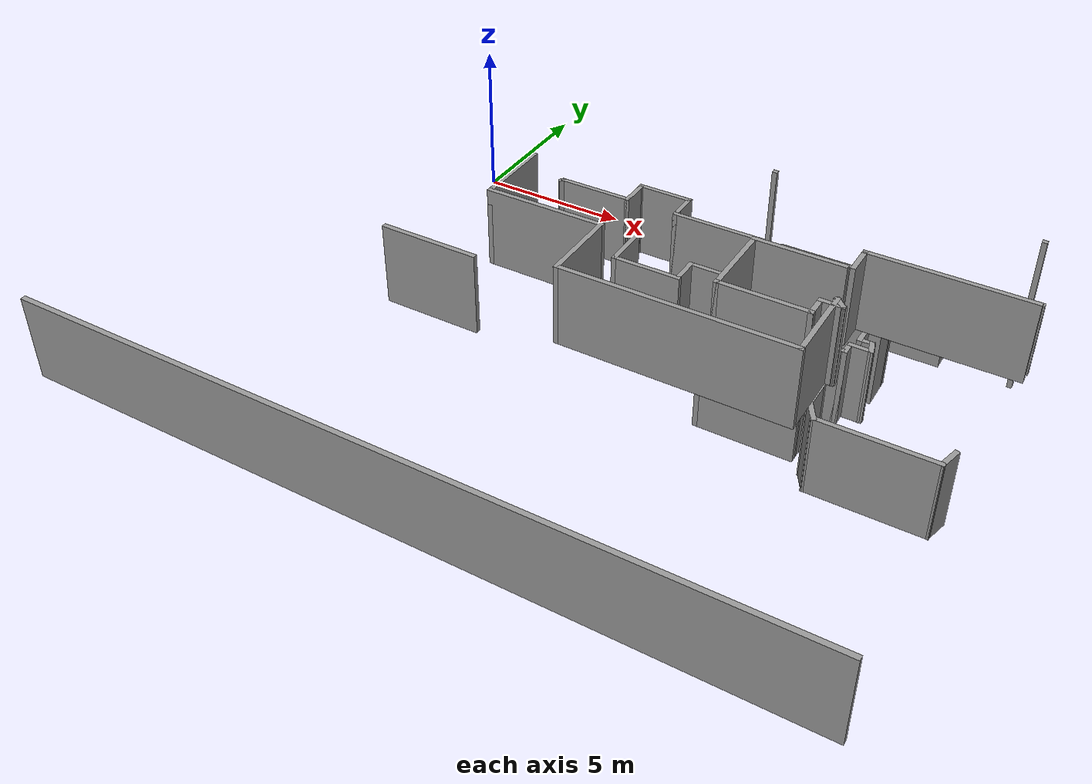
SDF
<sdf version="1.4">
 <model name="gdc">
  <pose>30.4954 -5.57665 0 0 -0 0</pose>
  <link name="Wall_124">
   <collision name="Wall_124_Collision">
    <geometry><box><size>0.75 0.15 2.5</size></box></geometry>
    <pose>0 0 1.25 0 -0 0</pose>
   </collision>
   <visual name="Wall_124_Visual">
    <pose>0 0 1.25 0 -0 0</pose>
    <geometry><box><size>0.75 0.15 2.5</size></box></geometry>
    <material>
     <script><uri>file://media/materials/scripts/gazebo.material</uri><name>Gazebo/Grey</name></script>
     <ambient>1 1 1 1</ambient>
    </material>
   </visual>
   <pose>-11.4107 -3.24451 0 0 0 -1.8326</pose>
  </link>
  <link name="Wall_125">
   <collision name="Wall_125_Collision">
    <geometry><box><size>3.5 0.15 2.5</size></box></geometry>
    <pose>0 0 1.25 0 -0 0</pose>
   </collision>
   <visual name="Wall_125_Visual">
    <pose>0 0 1.25 0 -0 0</pose>
    <geometry><box><size>3.5 0.15 2.5</size></box></geometry>
    <material>
     <script><uri>file://media/materials/scripts/gazebo.material</uri><name>Gazebo/Grey</name></script>
     <ambient>1 1 1 1</ambient>
    </material>
   </visual>
   <pose>-13.1633 -3.53429 0 0 -0 3.14159</pose>
  </link>
  <link name="Wall_126">
   <collision name="Wall_126_Collision">
    <geometry><box><size>0.75 0.15 2.5</size></box></geometry>
    <pose>0 0 1.25 0 -0 0</pose>
   </collision>
   <visual name="Wall_126_Visual">
    <pose>0 0 1.25 0 -0 0</pose>
    <geometry><box><size>0.75 0.15 2.5</size></box></geometry>
    <material>
     <script><uri>file://media/materials/scripts/gazebo.material</uri><name>Gazebo/Grey</name></script>
     <ambient>1 1 1 1</ambient>
    </material>
   </visual>
   <pose>-14.9883 -3.27449 0 0 -0 2.0944</pose>
  </link>
  <link name="Wall_127">
   <collision name="Wall_127_Collision">
    <geometry><box><size>1 0.15 2.5</size></box></geometry>
    <pose>0 0 1.25 0 -0 0</pose>
   </collision>
   <visual name="Wall_127_Visual">
    <pose>0 0 1.25 0 -0 0</pose>
    <geometry><box><size>1 0.15 2.5</size></box></geometry>
    <material>
     <script><uri>file://media/materials/scripts/gazebo.material</uri><name>Gazebo/Grey</name></script>
     <ambient>1 1 1 1</ambient>
    </material>
   </visual>
   <pose>-15.1383 -2.58968 0 0 -0 1.5708</pose>
  </link>
  <link name="Wall_128">
   <collision name="Wall_128_Collision">
    <geometry><box><size>0.5 0.15 2.5</size></box></geometry>
    <pose>0 0 1.25 0 -0 0</pose>
   </collision>
   <visual name="Wall_128_Visual">
    <pose>0 0 1.25 0 -0 0</pose>
    <geometry><box><size>0.5 0.15 2.5</size></box></geometry>
    <material>
     <script><uri>file://media/materials/scripts/gazebo.material</uri><name>Gazebo/Grey</name></script>
     <ambient>1 1 1 1</ambient>
    </material>
   </visual>
   <pose>-15.3133 -2.16468 0 0 -0 3.14159</pose>
  </link>
  <link name="Wall_129">
   <collision name="Wall_129_Collision">
    <geometry><box><size>0.25 0.15 2.5</size></box></geometry>
    <pose>0 0 1.25 0 -0 0</pose>
   </collision>
   <visual name="Wall_129_Visual">
    <pose>0 0 1.25 0 -0 0</pose>
    <geometry><box><size>0.25 0.15 2.5</size></box></geometry>
    <material>
     <script><uri>file://media/materials/scripts/gazebo.material</uri><name>Gazebo/Grey</name></script>
     <ambient>1 1 1 1</ambient>
    </material>
   </visual>
   <pose>-15.5383 -2.16468 0 0 -0 3.14159</pose>
  </link>
  <link name="Wall_130">
   <collision name="Wall_130_Collision">
    <geometry><box><size>0.5 0.15 2.5</size></box></geometry>
    <pose>0 0 1.25 0 -0 0</pose>
   </collision>
   <visual name="Wall_130_Visual">
    <pose>0 0 1.25 0 -0 0</pose>
    <geometry><box><size>0.5 0.15 2.5</size></box></geometry>
    <material>
     <script><uri>file://media/materials/scripts/gazebo.material</uri><name>Gazebo/Grey</name></script>
     <ambient>1 1 1 1</ambient>
    </material>
   </visual>
   <pose>-15.5883 -2.33968 0 0 0 -1.5708</pose>
  </link>
  <link name="Wall_131">
   <collision name="Wall_131_Collision">
    <geometry><box><size>0.25 0.15 2.5</size></box></geometry>
    <pose>0 0 1.25 0 -0 0</pose>
   </collision>
   <visual name="Wall_131_Visual">
    <pose>0 0 1.25 0 -0 0</pose>
    <geometry><box><size>0.25 0.15 2.5</size></box></geometry>
    <material>
     <script><uri>file://media/materials/scripts/gazebo.material</uri><name>Gazebo/Grey</name></script>
     <ambient>1 1 1 1</ambient>
    </material>
   </visual>
   <pose>-15.5883 -2.56468 0 0 0 -1.5708</pose>
  </link>
  <link name="Wall_132">
   <collision name="Wall_132_Collision">
    <geometry><box><size>3 0.15 2.5</size></box></geometry>
    <pose>0 0 1.25 0 -0 0</pose>
   </collision>
   <visual name="Wall_132_Visual">
    <pose>0 0 1.25 0 -0 0</pose>
    <geometry><box><size>3 0.15 2.5</size></box></geometry>
    <material>
     <script><uri>file://media/materials/scripts/gazebo.material</uri><name>Gazebo/Grey</name></script>
     <ambient>1 1 1 1</ambient>
    </material>
   </visual>
   <pose>-17.0133 -2.61468 0 0 -0 3.14159</pose>
  </link>
  <link name="Wall_133">
   <collision name="Wall_133_Collision">
    <geometry><box><size>2.5 0.15 2.5</size></box></geometry>
    <pose>0 0 1.25 0 -0 0</pose>
   </collision>
   <visual name="Wall_133_Visual">
    <pose>0 0 1.25 0 -0 0</pose>
    <geometry><box><size>2.5 0.15 2.5</size></box></geometry>
    <material>
     <script><uri>file://media/materials/scripts/gazebo.material</uri><name>Gazebo/Grey</name></script>
     <ambient>1 1 1 1</ambient>
    </material>
   </visual>
   <pose>-18.4383 -1.43968 0 0 -0 1.5708</pose>
  </link>
  <link name="Wall_134">
   <collision name="Wall_134_Collision">
    <geometry><box><size>0.25 0.15 2.5</size></box></geometry>
    <pose>0 0 1.25 0 -0 0</pose>
   </collision>
   <visual name="Wall_134_Visual">
    <pose>0 0 1.25 0 -0 0</pose>
    <geometry><box><size>0.25 0.15 2.5</size></box></geometry>
    <material>
     <script><uri>file://media/materials/scripts/gazebo.material</uri><name>Gazebo/Grey</name></script>
     <ambient>1 1 1 1</ambient>
    </material>
   </visual>
   <pose>-18.4383 -0.214678 0 0 -0 1.5708</pose>
  </link>
  <link name="Wall_135">
   <collision name="Wall_135_Collision">
    <geometry><box><size>3 0.15 2.5</size></box></geometry>
    <pose>0 0 1.25 0 -0 0</pose>
   </collision>
   <visual name="Wall_135_Visual">
    <pose>0 0 1.25 0 -0 0</pose>
    <geometry><box><size>3 0.15 2.5</size></box></geometry>
    <material>
     <script><uri>file://media/materials/scripts/gazebo.material</uri><name>Gazebo/Grey</name></script>
     <ambient>1 1 1 1</ambient>
    </material>
   </visual>
   <pose>-17.0133 -0.164678 0 0 -0 0</pose>
  </link>
  <link name="Wall_136">
   <collision name="Wall_136_Collision">
    <geometry><box><size>0.5 0.15 2.5</size></box></geometry>
    <pose>0 0 1.25 0 -0 0</pose>
   </collision>
   <visual name="Wall_136_Visual">
    <pose>0 0 1.25 0 -0 0</pose>
    <geometry><box><size>0.5 0.15 2.5</size></box></geometry>
    <material>
     <script><uri>file://media/materials/scripts/gazebo.material</uri><name>Gazebo/Grey</name></script>
     <ambient>1 1 1 1</ambient>
    </material>
   </visual>
   <pose>-15.5883 -0.339678 0 0 0 -1.5708</pose>
  </link>
  <link name="Wall_137">
   <collision name="Wall_137_Collision">
    <geometry><box><size>0.5 0.15 2.5</size></box></geometry>
    <pose>0 0 1.25 0 -0 0</pose>
   </collision>
   <visual name="Wall_137_Visual">
    <pose>0 0 1.25 0 -0 0</pose>
    <geometry><box><size>0.5 0.15 2.5</size></box></geometry>
    <material>
     <script><uri>file://media/materials/scripts/gazebo.material</uri><name>Gazebo/Grey</name></script>
     <ambient>1 1 1 1</ambient>
    </material>
   </visual>
   <pose>-15.4133 -0.514678 0 0 -0 0</pose>
  </link>
  <link name="Wall_138">
   <collision name="Wall_138_Collision">
    <geometry><box><size>0.25 0.15 2.5</size></box></geometry>
    <pose>0 0 1.25 0 -0 0</pose>
   </collision>
   <visual name="Wall_138_Visual">
    <pose>0 0 1.25 0 -0 0</pose>
    <geometry><box><size>0.25 0.15 2.5</size></box></geometry>
    <material>
     <script><uri>file://media/materials/scripts/gazebo.material</uri><name>Gazebo/Grey</name></script>
     <ambient>1 1 1 1</ambient>
    </material>
   </visual>
   <pose>-15.1883 -0.514678 0 0 -0 0</pose>
  </link>
  <link name="Wall_139">
   <collision name="Wall_139_Collision">
    <geometry><box><size>0.5 0.15 2.5</size></box></geometry>
    <pose>0 0 1.25 0 -0 0</pose>
   </collision>
   <visual name="Wall_139_Visual">
    <pose>0 0 1.25 0 -0 0</pose>
    <geometry><box><size>0.5 0.15 2.5</size></box></geometry>
    <material>
     <script><uri>file://media/materials/scripts/gazebo.material</uri><name>Gazebo/Grey</name></script>
     <ambient>1 1 1 1</ambient>
    </material>
   </visual>
   <pose>-15.1383 -0.339678 0 0 -0 1.5708</pose>
  </link>
  <link name="Wall_140">
   <collision name="Wall_140_Collision">
    <geometry><box><size>0.75 0.15 2.5</size></box></geometry>
    <pose>0 0 1.25 0 -0 0</pose>
   </collision>
   <visual name="Wall_140_Visual">
    <pose>0 0 1.25 0 -0 0</pose>
    <geometry><box><size>0.75 0.15 2.5</size></box></geometry>
    <material>
     <script><uri>file://media/materials/scripts/gazebo.material</uri><name>Gazebo/Grey</name></script>
     <ambient>1 1 1 1</ambient>
    </material>
   </visual>
   <pose>-14.8383 -0.164678 0 0 -0 0</pose>
  </link>
  <link name="Wall_141">
   <collision name="Wall_141_Collision">
    <geometry><box><size>0.5 0.15 2.5</size></box></geometry>
    <pose>0 0 1.25 0 -0 0</pose>
   </collision>
   <visual name="Wall_141_Visual">
    <pose>0 0 1.25 0 -0 0</pose>
    <geometry><box><size>0.5 0.15 2.5</size></box></geometry>
    <material>
     <script><uri>file://media/materials/scripts/gazebo.material</uri><name>Gazebo/Grey</name></script>
     <ambient>1 1 1 1</ambient>
    </material>
   </visual>
   <pose>-14.5836 0.004359 0 0 -0 1.8326</pose>
  </link>
  <link name="Wall_142">
   <collision name="Wall_142_Collision">
    <geometry><box><size>0.5 0.15 2.5</size></box></geometry>
    <pose>0 0 1.25 0 -0 0</pose>
   </collision>
   <visual name="Wall_142_Visual">
    <pose>0 0 1.25 0 -0 0</pose>
    <geometry><box><size>0.5 0.15 2.5</size></box></geometry>
    <material>
     <script><uri>file://media/materials/scripts/gazebo.material</uri><name>Gazebo/Grey</name></script>
     <ambient>1 1 1 1</ambient>
    </material>
   </visual>
   <pose>-14.8039 0.173396 0 0 -0 3.14159</pose>
  </link>
  <link name="Wall_143">
   <collision name="Wall_143_Collision">
    <geometry><box><size>0.75 0.15 2.5</size></box></geometry>
    <pose>0 0 1.25 0 -0 0</pose>
   </collision>
   <visual name="Wall_143_Visual">
    <pose>0 0 1.25 0 -0 0</pose>
    <geometry><box><size>0.75 0.15 2.5</size></box></geometry>
    <material>
     <script><uri>file://media/materials/scripts/gazebo.material</uri><name>Gazebo/Grey</name></script>
     <ambient>1 1 1 1</ambient>
    </material>
   </visual>
   <pose>-14.9789 0.473396 0 0 -0 1.5708</pose>
  </link>
  <link name="Wall_144">
   <collision name="Wall_144_Collision">
    <geometry><box><size>0.5 0.15 2.5</size></box></geometry>
    <pose>0 0 1.25 0 -0 0</pose>
   </collision>
   <visual name="Wall_144_Visual">
    <pose>0 0 1.25 0 -0 0</pose>
    <geometry><box><size>0.5 0.15 2.5</size></box></geometry>
    <material>
     <script><uri>file://media/materials/scripts/gazebo.material</uri><name>Gazebo/Grey</name></script>
     <ambient>1 1 1 1</ambient>
    </material>
   </visual>
   <pose>-14.8039 0.773396 0 0 -0 0</pose>
  </link>
  <link name="Wall_145">
   <collision name="Wall_145_Collision">
    <geometry><box><size>1 0.15 2.5</size></box></geometry>
    <pose>0 0 1.25 0 -0 0</pose>
   </collision>
   <visual name="Wall_145_Visual">
    <pose>0 0 1.25 0 -0 0</pose>
    <geometry><box><size>1 0.15 2.5</size></box></geometry>
    <material>
     <script><uri>file://media/materials/scripts/gazebo.material</uri><name>Gazebo/Grey</name></script>
     <ambient>1 1 1 1</ambient>
    </material>
   </visual>
   <pose>-14.6289 1.1984 0 0 -0 1.5708</pose>
  </link>
  <link name="Wall_147">
   <collision name="Wall_147_Collision">
    <geometry><box><size>0.25 0.15 2.5</size></box></geometry>
    <pose>0 0 1.25 0 -0 0</pose>
   </collision>
   <visual name="Wall_147_Visual">
    <pose>0 0 1.25 0 -0 0</pose>
    <geometry><box><size>0.25 0.15 2.5</size></box></geometry>
    <material>
     <script><uri>file://media/materials/scripts/gazebo.material</uri><name>Gazebo/Grey</name></script>
     <ambient>1 1 1 1</ambient>
    </material>
   </visual>
   <pose>-14.6289 1.6734 0 0 -0 1.5708</pose>
  </link>
  <link name="Wall_148">
   <collision name="Wall_148_Collision">
    <geometry><box><size>4.5 0.15 2.5</size></box></geometry>
    <pose>0 0 1.25 0 -0 0</pose>
   </collision>
   <visual name="Wall_148_Visual">
    <pose>0 0 1.25 0 -0 0</pose>
    <geometry><box><size>4.5 0.15 2.5</size></box></geometry>
    <material>
     <script><uri>file://media/materials/scripts/gazebo.material</uri><name>Gazebo/Grey</name></script>
     <ambient>1 1 1 1</ambient>
    </material>
   </visual>
   <pose>-16.8039 1.7234 0 0 -0 3.14159</pose>
  </link>
  <link name="Wall_149">
   <collision name="Wall_149_Collision">
    <geometry><box><size>0.75 0.15 2.5</size></box></geometry>
    <pose>0 0 1.25 0 -0 0</pose>
   </collision>
   <visual name="Wall_149_Visual">
    <pose>0 0 1.25 0 -0 0</pose>
    <geometry><box><size>0.75 0.15 2.5</size></box></geometry>
    <material>
     <script><uri>file://media/materials/scripts/gazebo.material</uri><name>Gazebo/Grey</name></script>
     <ambient>1 1 1 1</ambient>
    </material>
   </visual>
   <pose>-18.9789 1.4234 0 0 0 -1.5708</pose>
  </link>
  <link name="Wall_150">
   <collision name="Wall_150_Collision">
    <geometry><box><size>1.75 0.15 2.5</size></box></geometry>
    <pose>0 0 1.25 0 -0 0</pose>
   </collision>
   <visual name="Wall_150_Visual">
    <pose>0 0 1.25 0 -0 0</pose>
    <geometry><box><size>1.75 0.15 2.5</size></box></geometry>
    <material>
     <script><uri>file://media/materials/scripts/gazebo.material</uri><name>Gazebo/Grey</name></script>
     <ambient>1 1 1 1</ambient>
    </material>
   </visual>
   <pose>-19.7789 1.1234 0 0 -0 3.14159</pose>
  </link>
  <link name="Wall_151">
   <collision name="Wall_151_Collision">
    <geometry><box><size>1 0.15 2.5</size></box></geometry>
    <pose>0 0 1.25 0 -0 0</pose>
   </collision>
   <visual name="Wall_151_Visual">
    <pose>0 0 1.25 0 -0 0</pose>
    <geometry><box><size>1 0.15 2.5</size></box></geometry>
    <material>
     <script><uri>file://media/materials/scripts/gazebo.material</uri><name>Gazebo/Grey</name></script>
     <ambient>1 1 1 1</ambient>
    </material>
   </visual>
   <pose>-20.5789 0.698396 0 0 0 -1.5708</pose>
  </link>
  <link name="Wall_152">
   <collision name="Wall_152_Collision">
    <geometry><box><size>2.25 0.15 2.5</size></box></geometry>
    <pose>0 0 1.25 0 -0 0</pose>
   </collision>
   <visual name="Wall_152_Visual">
    <pose>0 0 1.25 0 -0 0</pose>
    <geometry><box><size>2.25 0.15 2.5</size></box></geometry>
    <material>
     <script><uri>file://media/materials/scripts/gazebo.material</uri><name>Gazebo/Grey</name></script>
     <ambient>1 1 1 1</ambient>
    </material>
   </visual>
   <pose>-21.6289 0.273396 0 0 -0 3.14159</pose>
  </link>
  <link name="Wall_153">
   <collision name="Wall_153_Collision">
    <geometry><box><size>1.5 0.15 2.5</size></box></geometry>
    <pose>0 0 1.25 0 -0 0</pose>
   </collision>
   <visual name="Wall_153_Visual">
    <pose>0 0 1.25 0 -0 0</pose>
    <geometry><box><size>1.5 0.15 2.5</size></box></geometry>
    <material>
     <script><uri>file://media/materials/scripts/gazebo.material</uri><name>Gazebo/Grey</name></script>
     <ambient>1 1 1 1</ambient>
    </material>
   </visual>
   <pose>-22.6789 0.948396 0 0 -0 1.5708</pose>
  </link>
  <link name="Wall_46">
   <collision name="Wall_46_Collision">
    <geometry><box><size>0.25 0.15 2.5</size></box></geometry>
    <pose>0 0 1.25 0 -0 0</pose>
   </collision>
   <visual name="Wall_46_Visual">
    <pose>0 0 1.25 0 -0 0</pose>
    <geometry><box><size>0.25 0.15 2.5</size></box></geometry>
    <material>
     <script><uri>file://media/materials/scripts/gazebo.material</uri><name>Gazebo/Grey</name></script>
     <ambient>1 1 1 1</ambient>
    </material>
   </visual>
   <pose>-26.2962 3.33688 0 0 -0 0.785398</pose>
  </link>
  <link name="Wall_47">
   <collision name="Wall_47_Collision">
    <geometry><box><size>2.5 0.15 2.5</size></box></geometry>
    <pose>0 0 1.25 0 -0 0</pose>
   </collision>
   <visual name="Wall_47_Visual">
    <pose>0 0 1.25 0 -0 0</pose>
    <geometry><box><size>2.5 0.15 2.5</size></box></geometry>
    <material>
     <script><uri>file://media/materials/scripts/gazebo.material</uri><name>Gazebo/Grey</name></script>
     <ambient>1 1 1 1</ambient>
    </material>
   </visual>
   <pose>-25.0859 3.37223 0 0 -0 0</pose>
  </link>
  <link name="Wall_48">
   <collision name="Wall_48_Collision">
    <geometry><box><size>1 0.15 2.5</size></box></geometry>
    <pose>0 0 1.25 0 -0 0</pose>
   </collision>
   <visual name="Wall_48_Visual">
    <pose>0 0 1.25 0 -0 0</pose>
    <geometry><box><size>1 0.15 2.5</size></box></geometry>
    <material>
     <script><uri>file://media/materials/scripts/gazebo.material</uri><name>Gazebo/Grey</name></script>
     <ambient>1 1 1 1</ambient>
    </material>
   </visual>
   <pose>-23.9109 3.79723 0 0 -0 1.5708</pose>
  </link>
  <link name="Wall_49">
   <collision name="Wall_49_Collision">
    <geometry><box><size>0.25 0.15 2.5</size></box></geometry>
    <pose>0 0 1.25 0 -0 0</pose>
   </collision>
   <visual name="Wall_49_Visual">
    <pose>0 0 1.25 0 -0 0</pose>
    <geometry><box><size>0.25 0.15 2.5</size></box></geometry>
    <material>
     <script><uri>file://media/materials/scripts/gazebo.material</uri><name>Gazebo/Grey</name></script>
     <ambient>1 1 1 1</ambient>
    </material>
   </visual>
   <pose>-23.9109 4.27223 0 0 -0 1.5708</pose>
  </link>
  <link name="Wall_50">
   <collision name="Wall_50_Collision">
    <geometry><box><size>1.75 0.15 2.5</size></box></geometry>
    <pose>0 0 1.25 0 -0 0</pose>
   </collision>
   <visual name="Wall_50_Visual">
    <pose>0 0 1.25 0 -0 0</pose>
    <geometry><box><size>1.75 0.15 2.5</size></box></geometry>
    <material>
     <script><uri>file://media/materials/scripts/gazebo.material</uri><name>Gazebo/Grey</name></script>
     <ambient>1 1 1 1</ambient>
    </material>
   </visual>
   <pose>-23.1109 4.32223 0 0 -0 0</pose>
  </link>
  <link name="Wall_51">
   <collision name="Wall_51_Collision">
    <geometry><box><size>0.25 0.15 2.5</size></box></geometry>
    <pose>0 0 1.25 0 -0 0</pose>
   </collision>
   <visual name="Wall_51_Visual">
    <pose>0 0 1.25 0 -0 0</pose>
    <geometry><box><size>0.25 0.15 2.5</size></box></geometry>
    <material>
     <script><uri>file://media/materials/scripts/gazebo.material</uri><name>Gazebo/Grey</name></script>
     <ambient>1 1 1 1</ambient>
    </material>
   </visual>
   <pose>-22.2609 4.32223 0 0 -0 0</pose>
  </link>
  <link name="Wall_52">
   <collision name="Wall_52_Collision">
    <geometry><box><size>1 0.15 2.5</size></box></geometry>
    <pose>0 0 1.25 0 -0 0</pose>
   </collision>
   <visual name="Wall_52_Visual">
    <pose>0 0 1.25 0 -0 0</pose>
    <geometry><box><size>1 0.15 2.5</size></box></geometry>
    <material>
     <script><uri>file://media/materials/scripts/gazebo.material</uri><name>Gazebo/Grey</name></script>
     <ambient>1 1 1 1</ambient>
    </material>
   </visual>
   <pose>-22.2109 3.89723 0 0 0 -1.5708</pose>
  </link>
  <link name="Wall_53">
   <collision name="Wall_53_Collision">
    <geometry><box><size>0.25 0.15 2.5</size></box></geometry>
    <pose>0 0 1.25 0 -0 0</pose>
   </collision>
   <visual name="Wall_53_Visual">
    <pose>0 0 1.25 0 -0 0</pose>
    <geometry><box><size>0.25 0.15 2.5</size></box></geometry>
    <material>
     <script><uri>file://media/materials/scripts/gazebo.material</uri><name>Gazebo/Grey</name></script>
     <ambient>1 1 1 1</ambient>
    </material>
   </visual>
   <pose>-22.2109 3.42223 0 0 0 -1.5708</pose>
  </link>
  <link name="Wall_54">
   <collision name="Wall_54_Collision">
    <geometry><box><size>3.25 0.15 2.5</size></box></geometry>
    <pose>0 0 1.25 0 -0 0</pose>
   </collision>
   <visual name="Wall_54_Visual">
    <pose>0 0 1.25 0 -0 0</pose>
    <geometry><box><size>3.25 0.15 2.5</size></box></geometry>
    <material>
     <script><uri>file://media/materials/scripts/gazebo.material</uri><name>Gazebo/Grey</name></script>
     <ambient>1 1 1 1</ambient>
    </material>
   </visual>
   <pose>-20.6609 3.37223 0 0 -0 0</pose>
  </link>
  <link name="Wall_547">
   <collision name="Wall_547_Collision">
    <geometry><box><size>0.15 0.15 2.5</size></box></geometry>
    <pose>0 0 1.25 0 -0 0</pose>
   </collision>
   <visual name="Wall_547_Visual">
    <pose>0 0 1.25 0 -0 0</pose>
    <geometry><box><size>0.15 0.15 2.5</size></box></geometry>
    <material>
     <script><uri>file://media/materials/scripts/gazebo.material</uri><name>Gazebo/Grey</name></script>
     <ambient>1 1 1 1</ambient>
    </material>
   </visual>
   <pose>-19.0609 3.28563 2.5 0 -0 0</pose>
  </link>
  <link name="Wall_55">
   <collision name="Wall_55_Collision">
    <geometry><box><size>0.25 0.15 2.5</size></box></geometry>
    <pose>0 0 1.25 0 -0 0</pose>
   </collision>
   <visual name="Wall_55_Visual">
    <pose>0 0 1.25 0 -0 0</pose>
    <geometry><box><size>0.25 0.15 2.5</size></box></geometry>
    <material>
     <script><uri>file://media/materials/scripts/gazebo.material</uri><name>Gazebo/Grey</name></script>
     <ambient>1 1 1 1</ambient>
    </material>
   </visual>
   <pose>-19.0859 3.32893 0 0 0 -1.0472</pose>
  </link>
  <link name="Wall_56">
   <collision name="Wall_56_Collision">
    <geometry><box><size>0.15 0.15 2.5</size></box></geometry>
    <pose>0 0 1.25 0 -0 0</pose>
   </collision>
   <visual name="Wall_56_Visual">
    <pose>0 0 1.25 0 -0 0</pose>
    <geometry><box><size>0.15 0.15 2.5</size></box></geometry>
    <material>
     <script><uri>file://media/materials/scripts/gazebo.material</uri><name>Gazebo/Grey</name></script>
     <ambient>1 1 1 1</ambient>
    </material>
   </visual>
   <pose>-19.0609 3.28563 0 0 -0 0</pose>
  </link>
  <link name="Wall_564">
   <collision name="Wall_564_Collision">
    <geometry><box><size>0.15 0.15 2.5</size></box></geometry>
    <pose>0 0 1.25 0 -0 0</pose>
   </collision>
   <visual name="Wall_564_Visual">
    <pose>0 0 1.25 0 -0 0</pose>
    <geometry><box><size>0.15 0.15 2.5</size></box></geometry>
    <material>
     <script><uri>file://media/materials/scripts/gazebo.material</uri><name>Gazebo/Grey</name></script>
     <ambient>1 1 1 1</ambient>
    </material>
   </visual>
   <pose>-11.3484 3.53422 2.5 0 -0 0</pose>
  </link>
  <link name="Wall_57">
   <collision name="Wall_57_Collision">
    <geometry><box><size>0.25 0.15 2.5</size></box></geometry>
    <pose>0 0 1.25 0 -0 0</pose>
   </collision>
   <visual name="Wall_57_Visual">
    <pose>0 0 1.25 0 -0 0</pose>
    <geometry><box><size>0.25 0.15 2.5</size></box></geometry>
    <material>
     <script><uri>file://media/materials/scripts/gazebo.material</uri><name>Gazebo/Grey</name></script>
     <ambient>1 1 1 1</ambient>
    </material>
   </visual>
   <pose>-19.0255 3.25027 0 0 0 -0.785398</pose>
  </link>
  <link name="Wall_61">
   <collision name="Wall_61_Collision">
    <geometry><box><size>0.25 0.15 2.5</size></box></geometry>
    <pose>0 0 1.25 0 -0 0</pose>
   </collision>
   <visual name="Wall_61_Visual">
    <pose>0 0 1.25 0 -0 0</pose>
    <geometry><box><size>0.25 0.15 2.5</size></box></geometry>
    <material>
     <script><uri>file://media/materials/scripts/gazebo.material</uri><name>Gazebo/Grey</name></script>
     <ambient>1 1 1 1</ambient>
    </material>
   </visual>
   <pose>-19.0255 3.25027 0 0 0 -0.785398</pose>
  </link>
  <link name="Wall_62">
   <collision name="Wall_62_Collision">
    <geometry><box><size>0.25 0.15 2.5</size></box></geometry>
    <pose>0 0 1.25 0 -0 0</pose>
   </collision>
   <visual name="Wall_62_Visual">
    <pose>0 0 1.25 0 -0 0</pose>
    <geometry><box><size>0.25 0.15 2.5</size></box></geometry>
    <material>
     <script><uri>file://media/materials/scripts/gazebo.material</uri><name>Gazebo/Grey</name></script>
     <ambient>1 1 1 1</ambient>
    </material>
   </visual>
   <pose>-18.9419 3.20198 0 0 0 -0.261799</pose>
  </link>
  <link name="Wall_63">
   <collision name="Wall_63_Collision">
    <geometry><box><size>0.25 0.15 2.5</size></box></geometry>
    <pose>0 0 1.25 0 -0 0</pose>
   </collision>
   <visual name="Wall_63_Visual">
    <pose>0 0 1.25 0 -0 0</pose>
    <geometry><box><size>0.25 0.15 2.5</size></box></geometry>
    <material>
     <script><uri>file://media/materials/scripts/gazebo.material</uri><name>Gazebo/Grey</name></script>
     <ambient>1 1 1 1</ambient>
    </material>
   </visual>
   <pose>-18.8436 3.18904 0 0 -0 0</pose>
  </link>
  <link name="Wall_66">
   <collision name="Wall_66_Collision">
    <geometry><box><size>0.25 0.15 2.5</size></box></geometry>
    <pose>0 0 1.25 0 -0 0</pose>
   </collision>
   <visual name="Wall_66_Visual">
    <pose>0 0 1.25 0 -0 0</pose>
    <geometry><box><size>0.25 0.15 2.5</size></box></geometry>
    <material>
     <script><uri>file://media/materials/scripts/gazebo.material</uri><name>Gazebo/Grey</name></script>
     <ambient>1 1 1 1</ambient>
    </material>
   </visual>
   <pose>-18.8436 3.18904 0 0 -0 0</pose>
  </link>
  <link name="Wall_665">
   <collision name="Wall_665_Collision">
    <geometry><box><size>2.75 0.15 2.5</size></box></geometry>
    <pose>0 0 1.25 0 -0 0</pose>
   </collision>
   <visual name="Wall_665_Visual">
    <pose>0 0 1.25 0 -0 0</pose>
    <geometry><box><size>2.75 0.15 2.5</size></box></geometry>
    <material>
     <script><uri>file://media/materials/scripts/gazebo.material</uri><name>Gazebo/Grey</name></script>
     <ambient>1 1 1 1</ambient>
    </material>
   </visual>
   <pose>-16.8332 -0.288804 2.5 0 -0 3.14159</pose>
  </link>
  <link name="Wall_666">
   <collision name="Wall_666_Collision">
    <geometry><box><size>2.5 0.15 2.5</size></box></geometry>
    <pose>0 0 1.25 0 -0 0</pose>
   </collision>
   <visual name="Wall_666_Visual">
    <pose>0 0 1.25 0 -0 0</pose>
    <geometry><box><size>2.5 0.15 2.5</size></box></geometry>
    <material>
     <script><uri>file://media/materials/scripts/gazebo.material</uri><name>Gazebo/Grey</name></script>
     <ambient>1 1 1 1</ambient>
    </material>
   </visual>
   <pose>-18.1332 -1.4638 2.5 0 0 -1.5708</pose>
  </link>
  <link name="Wall_667">
   <collision name="Wall_667_Collision">
    <geometry><box><size>2.75 0.15 2.5</size></box></geometry>
    <pose>0 0 1.25 0 -0 0</pose>
   </collision>
   <visual name="Wall_667_Visual">
    <pose>0 0 1.25 0 -0 0</pose>
    <geometry><box><size>2.75 0.15 2.5</size></box></geometry>
    <material>
     <script><uri>file://media/materials/scripts/gazebo.material</uri><name>Gazebo/Grey</name></script>
     <ambient>1 1 1 1</ambient>
    </material>
   </visual>
   <pose>-16.8332 -2.6388 2.5 0 -0 0</pose>
  </link>
  <link name="Wall_668">
   <collision name="Wall_668_Collision">
    <geometry><box><size>0.75 0.15 2.5</size></box></geometry>
    <pose>0 0 1.25 0 -0 0</pose>
   </collision>
   <visual name="Wall_668_Visual">
    <pose>0 0 1.25 0 -0 0</pose>
    <geometry><box><size>0.75 0.15 2.5</size></box></geometry>
    <material>
     <script><uri>file://media/materials/scripts/gazebo.material</uri><name>Gazebo/Grey</name></script>
     <ambient>1 1 1 1</ambient>
    </material>
   </visual>
   <pose>-15.5332 -2.3388 2.5 0 -0 1.5708</pose>
  </link>
  <link name="Wall_669">
   <collision name="Wall_669_Collision">
    <geometry><box><size>0.75 0.15 2.5</size></box></geometry>
    <pose>0 0 1.25 0 -0 0</pose>
   </collision>
   <visual name="Wall_669_Visual">
    <pose>0 0 1.25 0 -0 0</pose>
    <geometry><box><size>0.75 0.15 2.5</size></box></geometry>
    <material>
     <script><uri>file://media/materials/scripts/gazebo.material</uri><name>Gazebo/Grey</name></script>
     <ambient>1 1 1 1</ambient>
    </material>
   </visual>
   <pose>-15.2332 -2.0388 2.5 0 -0 0</pose>
  </link>
  <link name="Wall_67">
   <collision name="Wall_67_Collision">
    <geometry><box><size>0.25 0.15 2.5</size></box></geometry>
    <pose>0 0 1.25 0 -0 0</pose>
   </collision>
   <visual name="Wall_67_Visual">
    <pose>0 0 1.25 0 -0 0</pose>
    <geometry><box><size>0.25 0.15 2.5</size></box></geometry>
    <material>
     <script><uri>file://media/materials/scripts/gazebo.material</uri><name>Gazebo/Grey</name></script>
     <ambient>1 1 1 1</ambient>
    </material>
   </visual>
   <pose>-18.7686 3.23234 0 0 -0 1.0472</pose>
  </link>
  <link name="Wall_670">
   <collision name="Wall_670_Collision">
    <geometry><box><size>0.5 0.15 2.5</size></box></geometry>
    <pose>0 0 1.25 0 -0 0</pose>
   </collision>
   <visual name="Wall_670_Visual">
    <pose>0 0 1.25 0 -0 0</pose>
    <geometry><box><size>0.5 0.15 2.5</size></box></geometry>
    <material>
     <script><uri>file://media/materials/scripts/gazebo.material</uri><name>Gazebo/Grey</name></script>
     <ambient>1 1 1 1</ambient>
    </material>
   </visual>
   <pose>-15.057 -1.91506 2.5 0 -0 2.35619</pose>
  </link>
  <link name="Wall_671">
   <collision name="Wall_671_Collision">
    <geometry><box><size>2.5 0.15 2.5</size></box></geometry>
    <pose>0 0 1.25 0 -0 0</pose>
   </collision>
   <visual name="Wall_671_Visual">
    <pose>0 0 1.25 0 -0 0</pose>
    <geometry><box><size>2.5 0.15 2.5</size></box></geometry>
    <material>
     <script><uri>file://media/materials/scripts/gazebo.material</uri><name>Gazebo/Grey</name></script>
     <ambient>1 1 1 1</ambient>
    </material>
   </visual>
   <pose>-15.1807 -2.96632 2.5 0 0 -1.5708</pose>
  </link>
  <link name="Wall_672">
   <collision name="Wall_672_Collision">
    <geometry><box><size>7 0.15 2.5</size></box></geometry>
    <pose>0 0 1.25 0 -0 0</pose>
   </collision>
   <visual name="Wall_672_Visual">
    <pose>0 0 1.25 0 -0 0</pose>
    <geometry><box><size>7 0.15 2.5</size></box></geometry>
    <material>
     <script><uri>file://media/materials/scripts/gazebo.material</uri><name>Gazebo/Grey</name></script>
     <ambient>1 1 1 1</ambient>
    </material>
   </visual>
   <pose>-18.6057 -4.14132 2.5 0 -0 3.14159</pose>
  </link>
  <link name="Wall_673">
   <collision name="Wall_673_Collision">
    <geometry><box><size>2.5 0.15 2.5</size></box></geometry>
    <pose>0 0 1.25 0 -0 0</pose>
   </collision>
   <visual name="Wall_673_Visual">
    <pose>0 0 1.25 0 -0 0</pose>
    <geometry><box><size>2.5 0.15 2.5</size></box></geometry>
    <material>
     <script><uri>file://media/materials/scripts/gazebo.material</uri><name>Gazebo/Grey</name></script>
     <ambient>1 1 1 1</ambient>
    </material>
   </visual>
   <pose>-22.0307 -2.96632 2.5 0 -0 1.5708</pose>
  </link>
  <link name="Wall_674">
   <collision name="Wall_674_Collision">
    <geometry><box><size>3.75 0.15 2.5</size></box></geometry>
    <pose>0 0 1.25 0 -0 0</pose>
   </collision>
   <visual name="Wall_674_Visual">
    <pose>0 0 1.25 0 -0 0</pose>
    <geometry><box><size>3.75 0.15 2.5</size></box></geometry>
    <material>
     <script><uri>file://media/materials/scripts/gazebo.material</uri><name>Gazebo/Grey</name></script>
     <ambient>1 1 1 1</ambient>
    </material>
   </visual>
   <pose>-23.8307 -1.79132 2.5 0 -0 3.14159</pose>
  </link>
  <link name="Wall_675">
   <collision name="Wall_675_Collision">
    <geometry><box><size>2.5 0.15 2.5</size></box></geometry>
    <pose>0 0 1.25 0 -0 0</pose>
   </collision>
   <visual name="Wall_675_Visual">
    <pose>0 0 1.25 0 -0 0</pose>
    <geometry><box><size>2.5 0.15 2.5</size></box></geometry>
    <material>
     <script><uri>file://media/materials/scripts/gazebo.material</uri><name>Gazebo/Grey</name></script>
     <ambient>1 1 1 1</ambient>
    </material>
   </visual>
   <pose>-25.6307 -0.616316 2.5 0 -0 1.5708</pose>
  </link>
  <link name="Wall_68">
   <collision name="Wall_68_Collision">
    <geometry><box><size>0.25 0.15 2.5</size></box></geometry>
    <pose>0 0 1.25 0 -0 0</pose>
   </collision>
   <visual name="Wall_68_Visual">
    <pose>0 0 1.25 0 -0 0</pose>
    <geometry><box><size>0.25 0.15 2.5</size></box></geometry>
    <material>
     <script><uri>file://media/materials/scripts/gazebo.material</uri><name>Gazebo/Grey</name></script>
     <ambient>1 1 1 1</ambient>
    </material>
   </visual>
   <pose>-18.7082 3.311 0 0 -0 0.785398</pose>
  </link>
  <link name="Wall_682">
   <collision name="Wall_682_Collision">
    <geometry><box><size>3 0.15 2.5</size></box></geometry>
    <pose>0 0 1.25 0 -0 0</pose>
   </collision>
   <visual name="Wall_682_Visual">
    <pose>0 0 1.25 0 -0 0</pose>
    <geometry><box><size>3 0.15 2.5</size></box></geometry>
    <material>
     <script><uri>file://media/materials/scripts/gazebo.material</uri><name>Gazebo/Grey</name></script>
     <ambient>1 1 1 1</ambient>
    </material>
   </visual>
   <pose>-25.6184 -4.85209 2.5 0 -0 0</pose>
  </link>
  <link name="Wall_689">
   <collision name="Wall_689_Collision">
    <geometry><box><size>22.25 0.15 2.5</size></box></geometry>
    <pose>0 0 1.25 0 -0 0</pose>
   </collision>
   <visual name="Wall_689_Visual">
    <pose>0 0 1.25 0 -0 0</pose>
    <geometry><box><size>22.25 0.15 2.5</size></box></geometry>
    <material>
     <script><uri>file://media/materials/scripts/gazebo.material</uri><name>Gazebo/Grey</name></script>
     <ambient>1 1 1 1</ambient>
    </material>
   </visual>
   <pose>-21.7807 -12.2413 2.5 0 -0 0</pose>
  </link>
  <link name="Wall_69">
   <collision name="Wall_69_Collision">
    <geometry><box><size>0.25 0.15 2.5</size></box></geometry>
    <pose>0 0 1.25 0 -0 0</pose>
   </collision>
   <visual name="Wall_69_Visual">
    <pose>0 0 1.25 0 -0 0</pose>
    <geometry><box><size>0.25 0.15 2.5</size></box></geometry>
    <material>
     <script><uri>file://media/materials/scripts/gazebo.material</uri><name>Gazebo/Grey</name></script>
     <ambient>1 1 1 1</ambient>
    </material>
   </visual>
   <pose>-18.6296 3.37135 0 0 -0 0.523599</pose>
  </link>
  <link name="Wall_691">
   <collision name="Wall_691_Collision">
    <geometry><box><size>4.75 0.15 2.5</size></box></geometry>
    <pose>0 0 1.25 0 -0 0</pose>
   </collision>
   <visual name="Wall_691_Visual">
    <pose>0 0 1.25 0 -0 0</pose>
    <geometry><box><size>4.75 0.15 2.5</size></box></geometry>
    <material>
     <script><uri>file://media/materials/scripts/gazebo.material</uri><name>Gazebo/Grey</name></script>
     <ambient>1 1 1 1</ambient>
    </material>
   </visual>
   <pose>-13.0307 0.608684 2.5 0 -0 3.14159</pose>
  </link>
  <link name="Wall_692">
   <collision name="Wall_692_Collision">
    <geometry><box><size>1 0.15 2.5</size></box></geometry>
    <pose>0 0 1.25 0 -0 0</pose>
   </collision>
   <visual name="Wall_692_Visual">
    <pose>0 0 1.25 0 -0 0</pose>
    <geometry><box><size>1 0.15 2.5</size></box></geometry>
    <material>
     <script><uri>file://media/materials/scripts/gazebo.material</uri><name>Gazebo/Grey</name></script>
     <ambient>1 1 1 1</ambient>
    </material>
   </visual>
   <pose>-15.3307 0.183684 2.5 0 0 -1.5708</pose>
  </link>
  <link name="Wall_70">
   <collision name="Wall_70_Collision">
    <geometry><box><size>5.25 0.15 2.5</size></box></geometry>
    <pose>0 0 1.25 0 -0 0</pose>
   </collision>
   <visual name="Wall_70_Visual">
    <pose>0 0 1.25 0 -0 0</pose>
    <geometry><box><size>5.25 0.15 2.5</size></box></geometry>
    <material>
     <script><uri>file://media/materials/scripts/gazebo.material</uri><name>Gazebo/Grey</name></script>
     <ambient>1 1 1 1</ambient>
    </material>
   </visual>
   <pose>-16.0363 3.39635 0 0 -0 0</pose>
  </link>
  <link name="Wall_71">
   <collision name="Wall_71_Collision">
    <geometry><box><size>1 0.15 2.5</size></box></geometry>
    <pose>0 0 1.25 0 -0 0</pose>
   </collision>
   <visual name="Wall_71_Visual">
    <pose>0 0 1.25 0 -0 0</pose>
    <geometry><box><size>1 0.15 2.5</size></box></geometry>
    <material>
     <script><uri>file://media/materials/scripts/gazebo.material</uri><name>Gazebo/Grey</name></script>
     <ambient>1 1 1 1</ambient>
    </material>
   </visual>
   <pose>-13.4863 3.82135 0 0 -0 1.5708</pose>
  </link>
  <link name="Wall_72">
   <collision name="Wall_72_Collision">
    <geometry><box><size>0.25 0.15 2.5</size></box></geometry>
    <pose>0 0 1.25 0 -0 0</pose>
   </collision>
   <visual name="Wall_72_Visual">
    <pose>0 0 1.25 0 -0 0</pose>
    <geometry><box><size>0.25 0.15 2.5</size></box></geometry>
    <material>
     <script><uri>file://media/materials/scripts/gazebo.material</uri><name>Gazebo/Grey</name></script>
     <ambient>1 1 1 1</ambient>
    </material>
   </visual>
   <pose>-13.4863 4.29635 0 0 -0 1.5708</pose>
  </link>
  <link name="Wall_73">
   <collision name="Wall_73_Collision">
    <geometry><box><size>2.52645 0.15 2.5</size></box></geometry>
    <pose>0 0 1.25 0 -0 0</pose>
   </collision>
   <visual name="Wall_73_Visual">
    <pose>0 0 1.25 0 -0 0</pose>
    <geometry><box><size>2.52645 0.15 2.5</size></box></geometry>
    <material>
     <script><uri>file://media/materials/scripts/gazebo.material</uri><name>Gazebo/Grey</name></script>
     <ambient>1 1 1 1</ambient>
    </material>
   </visual>
   <pose>-12.2981 4.34635 0 0 -0 0</pose>
  </link>
  <link name="Wall_78">
   <collision name="Wall_78_Collision">
    <geometry><box><size>0.15 0.15 2.5</size></box></geometry>
    <pose>0 0 1.25 0 -0 0</pose>
   </collision>
   <visual name="Wall_78_Visual">
    <pose>0 0 1.25 0 -0 0</pose>
    <geometry><box><size>0.15 0.15 2.5</size></box></geometry>
    <material>
     <script><uri>file://media/materials/scripts/gazebo.material</uri><name>Gazebo/Grey</name></script>
     <ambient>1 1 1 1</ambient>
    </material>
   </visual>
   <pose>-11.3484 3.53422 0 0 -0 0</pose>
  </link>
  <static>1</static>
 </model>
</sdf>
